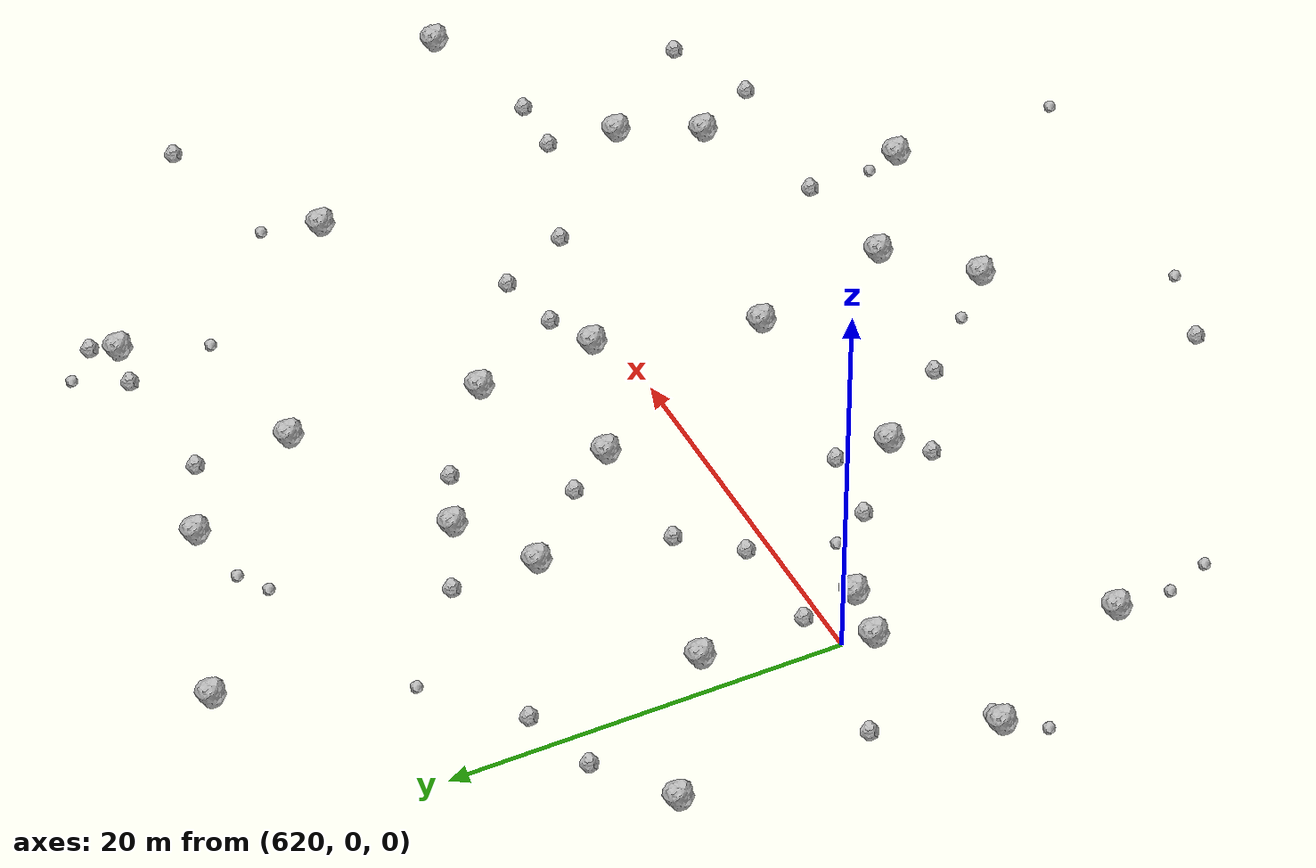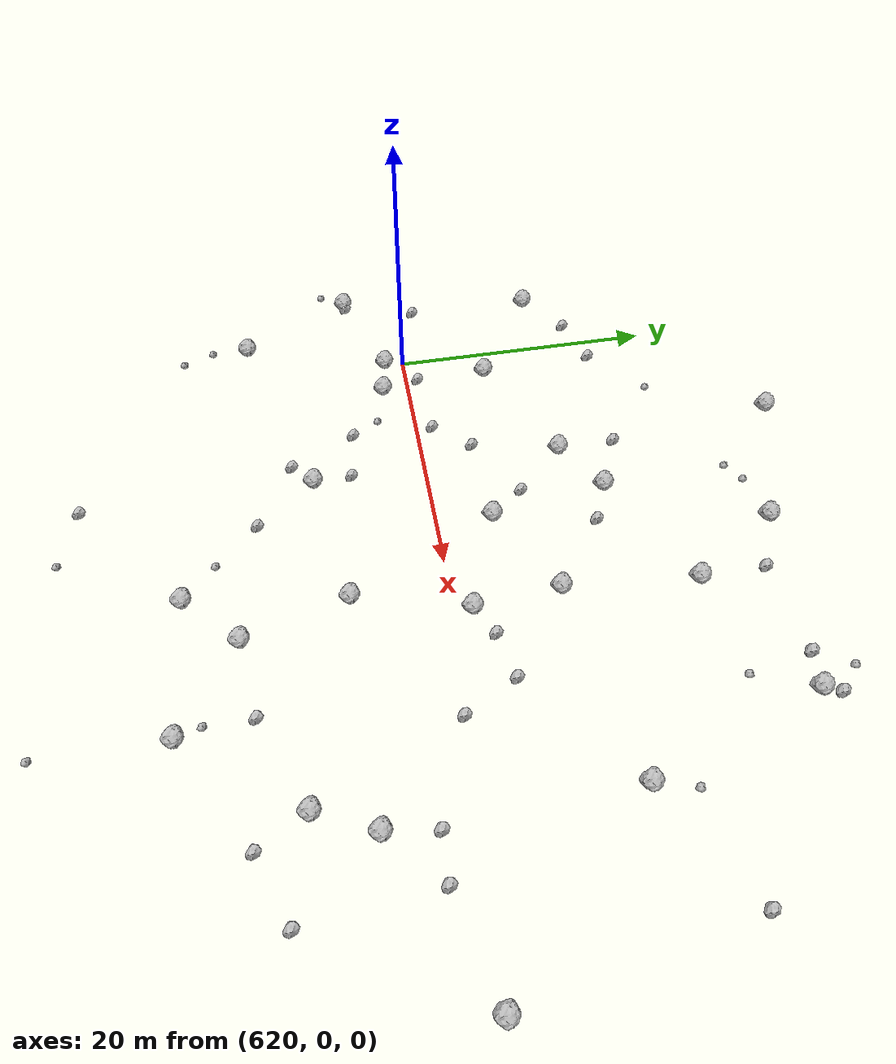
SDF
<sdf version="1.6">
 <world name="default">
  <include><uri>model://sun</uri></include>
  <model name="rock1_16_3">
   <include><uri>model://rock1</uri><pose>635.1923873793019 12.86992394753345 0.5 0 0 0</pose></include>
  </model>
  <model name="rock1_16_4">
   <include><uri>model://rock1</uri><pose>612.1348502263704 -4.084152141901502 0.5 0 0 0</pose></include>
  </model>
  <model name="rock1_16_5">
   <include><uri>model://rock1</uri><pose>643.501488165512 7.594454987567062 0.5 0 0 0</pose></include>
  </model>
  <model name="rock1_16_6">
   <include><uri>model://rock1</uri><pose>641.8521501998223 -6.921771034642262 0.5 0 0 0</pose></include>
  </model>
  <model name="rock1_16_7">
   <include><uri>model://rock1</uri><pose>631.3383281681492 -8.453823625393735 0.5 0 0 0</pose></include>
  </model>
  <model name="rock1_16_8">
   <include><uri>model://rock1</uri><pose>619.7608155300635 -1.5117267774002556 0.5 0 0 0</pose></include>
  </model>
  <model name="rock1_16_9">
   <include><uri>model://rock1</uri><pose>650.4192441247397 -18.95370281094558 0.5 0 0 0</pose></include>
  </model>
  <model name="rock1_16_10">
   <include><uri>model://rock1</uri><pose>653.8242648888598 22.29631937528707 0.5 0 0 0</pose></include>
  </model>
  <model name="rock1_16_11">
   <include><uri>model://rock1</uri><pose>658.3409465354205 -6.983177285535081 0.5 0 0 0</pose></include>
  </model>
  <model name="rock1_16_12">
   <include><uri>model://rock1</uri><pose>658.1269913579199 9.585940436390501 0.5 0 0 0</pose></include>
  </model>
  <model name="rock1_16_13">
   <include><uri>model://rock1</uri><pose>616.4295842409559 -12.537012459143636 0.5 0 0 0</pose></include>
  </model>
  <model name="rock1_16_14">
   <include><uri>model://rock1</uri><pose>656.415463067203 -10.992702127629393 0.5 0 0 0</pose></include>
  </model>
  <model name="rock1_16_15">
   <include><uri>model://rock1</uri><pose>622.7157066194497 -2.0305236867102003 0.5 0 0 0</pose></include>
  </model>
  <model name="rock1_16_16">
   <include><uri>model://rock1</uri><pose>640.010677220962 24.01895800172062 0.5 0 0 0</pose></include>
  </model>
  <model name="rock1_16_17">
   <include><uri>model://rock1</uri><pose>631.1634541780264 10.368216746267635 0.5 0 0 0</pose></include>
  </model>
  <model name="rock1_16_18">
   <include><uri>model://rock1</uri><pose>640.2819238689841 -18.31883793799399 0.5 0 0 0</pose></include>
  </model>
  <model name="rock1_16_19">
   <include><uri>model://rock1</uri><pose>644.3327082339058 17.325535892331004 0.5 0 0 0</pose></include>
  </model>
  <model name="rock1_16_20">
   <include><uri>model://rock1</uri><pose>644.0754589514469 1.254263453002661 0.5 0 0 0</pose></include>
  </model>
  <model name="rock1_16_21">
   <include><uri>model://rock1</uri><pose>636.5947079946734 4.12225672261323 0.5 0 0 0</pose></include>
  </model>
  <model name="rock1_16_22">
   <include><uri>model://rock1</uri><pose>614.3103035069014 11.299668013244279 0.5 0 0 0</pose></include>
  </model>
  <model name="rock1_16_23">
   <include><uri>model://rock1</uri><pose>669.1801561530154 -1.732776157559698 0.5 0 0 0</pose></include>
  </model>
  <model name="rock1_16_24">
   <include><uri>model://rock1</uri><pose>622.0451078815465 6.3384043356762945 0.5 0 0 0</pose></include>
  </model>
  <model name="rock1_16_25">
   <include><uri>model://rock1</uri><pose>644.0209802886345 -14.558522738316181 0.5 0 0 0</pose></include>
  </model>
  <model name="rock1_16_26">
   <include><uri>model://rock1</uri><pose>629.5956315590533 27.632486358790317 0.5 0 0 0</pose></include>
  </model>
  <model name="rock2_16_0">
   <include><uri>model://rock2</uri><pose>621.8714734907135 15.136183263932168 0.3 0 0 0</pose></include>
  </model>
  <model name="rock2_16_1">
   <include><uri>model://rock2</uri><pose>627.4494358766912 1.1840126190413223 0.3 0 0 0</pose></include>
  </model>
  <model name="rock2_16_2">
   <include><uri>model://rock2</uri><pose>629.6984001483326 -9.926094407455427 0.3 0 0 0</pose></include>
  </model>
  <model name="rock2_16_3">
   <include><uri>model://rock2</uri><pose>622.1751453287578 0.8575418882976322 0.3 0 0 0</pose></include>
  </model>
  <model name="rock2_16_4">
   <include><uri>model://rock2</uri><pose>634.7495374137541 6.664235527008849 0.3 0 0 0</pose></include>
  </model>
  <model name="rock2_16_5">
   <include><uri>model://rock2</uri><pose>651.8851047785894 -0.7568247199247011 0.3 0 0 0</pose></include>
  </model>
  <model name="rock2_16_6">
   <include><uri>model://rock2</uri><pose>631.1421374585276 14.737206067577311 0.3 0 0 0</pose></include>
  </model>
  <model name="rock2_16_7">
   <include><uri>model://rock2</uri><pose>662.920102611213 -12.585645003527375 0.3 0 0 0</pose></include>
  </model>
  <model name="rock2_16_8">
   <include><uri>model://rock2</uri><pose>649.852098582293 -13.77420758498247 0.3 0 0 0</pose></include>
  </model>
  <model name="rock2_16_9">
   <include><uri>model://rock2</uri><pose>614.2091410045512 1.6176189625745572 0.3 0 0 0</pose></include>
  </model>
  <model name="rock2_16_10">
   <include><uri>model://rock2</uri><pose>638.2863126788757 11.549254021772178 0.3 0 0 0</pose></include>
  </model>
  <model name="rock2_16_11">
   <include><uri>model://rock2</uri><pose>631.277948328008 -5.566351944453341 0.3 0 0 0</pose></include>
  </model>
  <model name="rock2_16_12">
   <include><uri>model://rock2</uri><pose>666.4539405889437 14.060975707734727 0.3 0 0 0</pose></include>
  </model>
  <model name="rock2_16_13">
   <include><uri>model://rock2</uri><pose>617.9709000075526 13.961771694603492 0.3 0 0 0</pose></include>
  </model>
  <model name="rock2_16_14">
   <include><uri>model://rock2</uri><pose>644.2981064127474 22.175320574099167 0.3 0 0 0</pose></include>
  </model>
  <model name="rock2_16_15">
   <include><uri>model://rock2</uri><pose>658.2883083306307 -14.41370275504716 0.3 0 0 0</pose></include>
  </model>
  <model name="rock2_16_16">
   <include><uri>model://rock2</uri><pose>651.2447295443792 22.70348265454188 0.3 0 0 0</pose></include>
  </model>
  <model name="rock2_16_17">
   <include><uri>model://rock2</uri><pose>629.7819950465464 3.8794456060384306 0.3 0 0 0</pose></include>
  </model>
  <model name="rock2_16_18">
   <include><uri>model://rock2</uri><pose>634.8078125091197 -12.808162658130271 0.3 0 0 0</pose></include>
  </model>
  <model name="rock2_16_19">
   <include><uri>model://rock2</uri><pose>649.8385127617653 3.095788980208347 0.3 0 0 0</pose></include>
  </model>
  <model name="rock2_16_20">
   <include><uri>model://rock2</uri><pose>627.3079956683646 -4.991195631089845 0.3 0 0 0</pose></include>
  </model>
  <model name="rock2_16_21">
   <include><uri>model://rock2</uri><pose>646.3924939361684 2.4055351022806306 0.3 0 0 0</pose></include>
  </model>
  <model name="rock2_16_22">
   <include><uri>model://rock2</uri><pose>662.058744020418 -3.5334738908514787 0.3 0 0 0</pose></include>
  </model>
  <model name="rock2_16_23">
   <include><uri>model://rock2</uri><pose>612.7326957960869 -3.9699593755850096 0.3 0 0 0</pose></include>
  </model>
  <model name="rock2_16_24">
   <include><uri>model://rock2</uri><pose>658.8343154937862 -3.412182719812705 0.3 0 0 0</pose></include>
  </model>
  <model name="rock2_16_25">
   <include><uri>model://rock2</uri><pose>654.3566585784356 23.543603731697146 0.3 0 0 0</pose></include>
  </model>
  <model name="rock2_16_26">
   <include><uri>model://rock2</uri><pose>631.4621720404692 -25.559392771339436 0.3 0 0 0</pose></include>
  </model>
  <model name="rock3_16_0">
   <include><uri>model://rock3</uri><pose>649.8362194016746 -17.201428644340467 0.2 0 0 0</pose></include>
  </model>
  <model name="rock3_16_1">
   <include><uri>model://rock3</uri><pose>616.3130239076875 -15.428993424226814 0.2 0 0 0</pose></include>
  </model>
  <model name="rock3_16_2">
   <include><uri>model://rock3</uri><pose>658.9264168160496 12.418497891660273 0.2 0 0 0</pose></include>
  </model>
  <model name="rock3_16_3">
   <include><uri>model://rock3</uri><pose>635.8998589046462 -26.97288611847798 0.2 0 0 0</pose></include>
  </model>
  <model name="rock3_16_4">
   <include><uri>model://rock3</uri><pose>636.4283230470975 23.329263033001496 0.2 0 0 0</pose></include>
  </model>
  <model name="rock3_16_5">
   <include><uri>model://rock3</uri><pose>652.6207189728992 25.14883884648905 0.2 0 0 0</pose></include>
  </model>
  <model name="rock3_16_6">
   <include><uri>model://rock3</uri><pose>626.0553027690705 -2.9244086615408733 0.2 0 0 0</pose></include>
  </model>
  <model name="rock3_16_7">
   <include><uri>model://rock3</uri><pose>634.9368263194032 22.367682932772354 0.2 0 0 0</pose></include>
  </model>
  <model name="rock3_16_8">
   <include><uri>model://rock3</uri><pose>650.3471481805307 -27.919334299107284 0.2 0 0 0</pose></include>
  </model>
  <model name="rock3_16_9">
   <include><uri>model://rock3</uri><pose>625.9710431549914 18.85968812005028 0.2 0 0 0</pose></include>
  </model>
  <model name="rock3_16_10">
   <include><uri>model://rock3</uri><pose>610.8736402045231 -5.926723440555595 0.2 0 0 0</pose></include>
  </model>
  <model name="rock3_16_11">
   <include><uri>model://rock3</uri><pose>652.1193043500855 18.035392400489897 0.2 0 0 0</pose></include>
  </model>
  <model name="rock3_16_12">
   <include><uri>model://rock3</uri><pose>637.7555937115378 -15.954163527367868 0.2 0 0 0</pose></include>
  </model>
  <model name="rock3_16_13">
   <include><uri>model://rock3</uri><pose>617.2015946768365 -17.780954768197276 0.2 0 0 0</pose></include>
  </model>
 </world>
</sdf>
